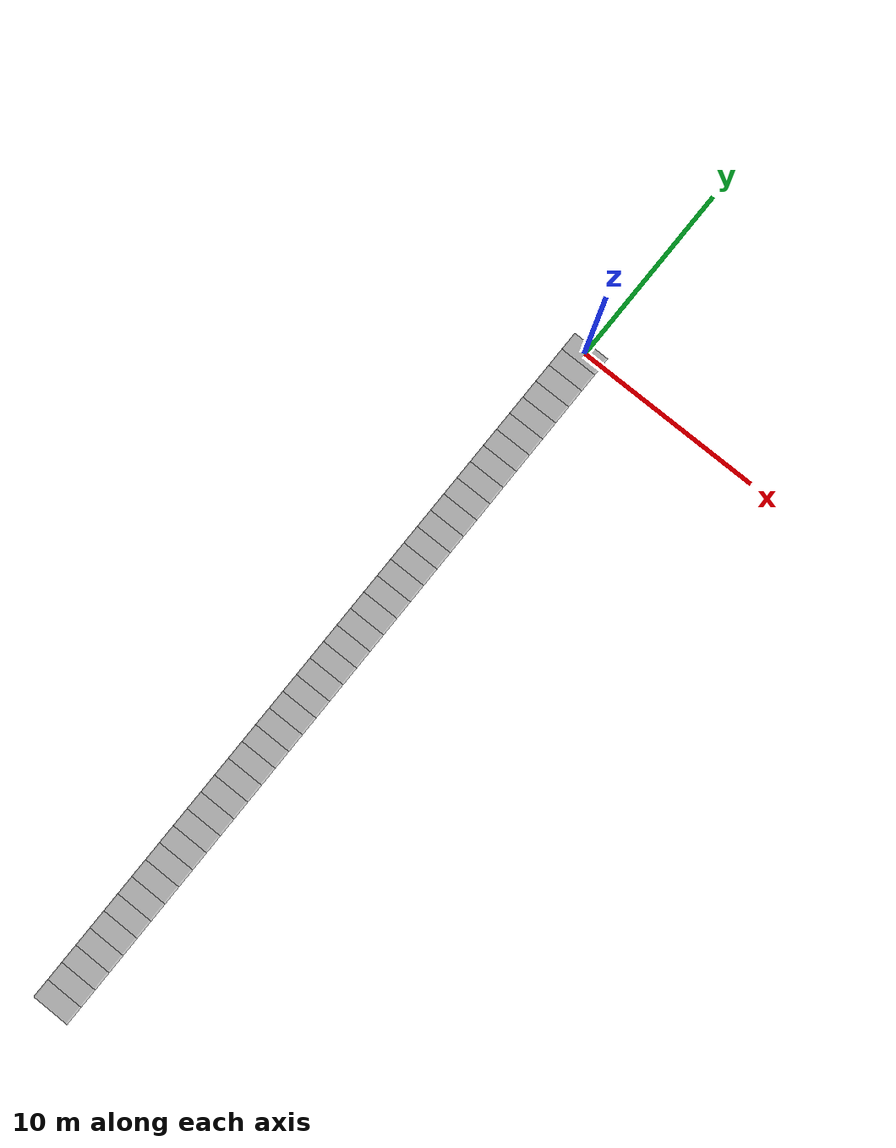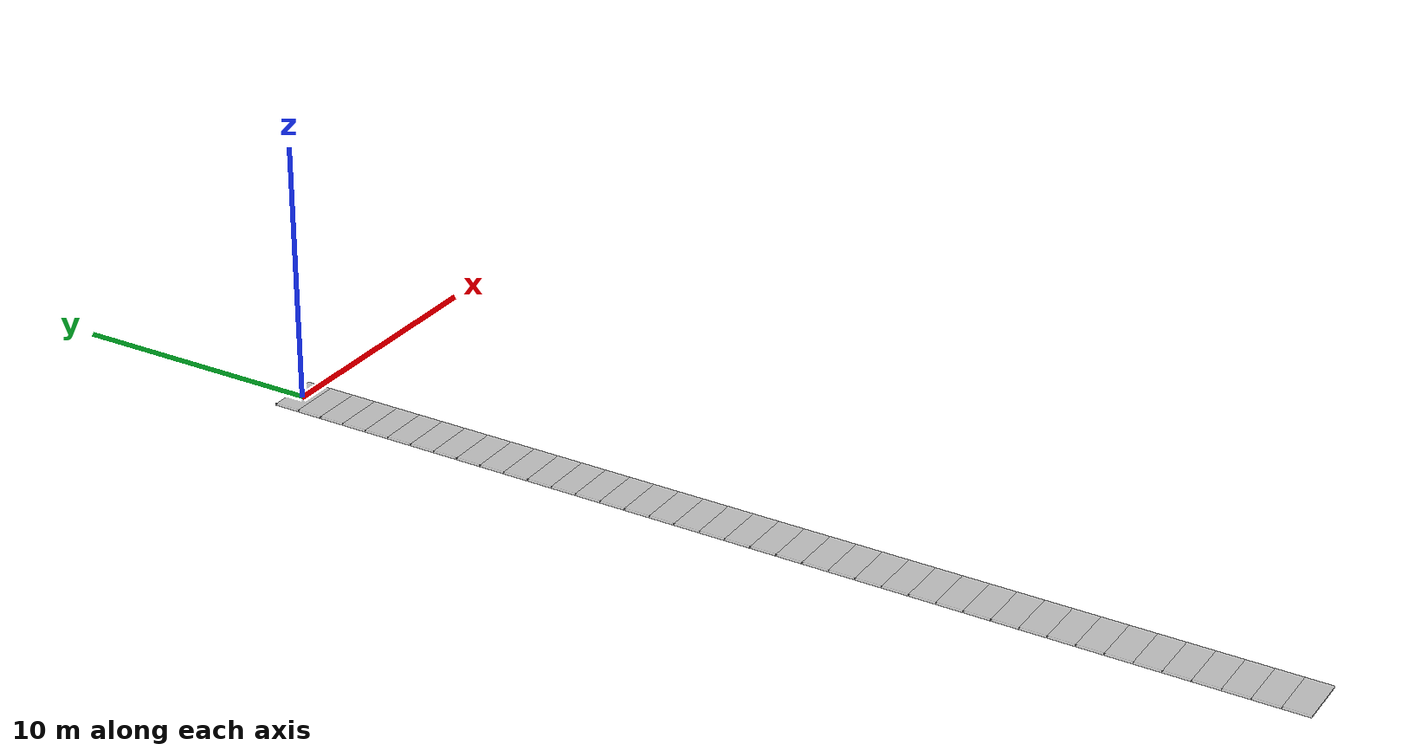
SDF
<sdf version="1.6">
 <world name="straight">
  <gravity>0 0 -9.8</gravity>
  <model name="Road.000">
   <static>1</static>
   <link name="link_d0">
    <inertial>
     <mass>0</mass>
     <inertia>
      <ixx>0.166667</ixx>
      <ixy>0</ixy>
      <ixz>0</ixz>
      <iyy>0.166667</iyy>
      <iyz>0</iyz>
      <izz>0.166667</izz>
     </inertia>
    </inertial>
    <collision concave="yes" name="collision_0">
     <geometry><mesh><scale>1 1 1</scale><uri>Road.000.obj</uri></mesh></geometry>
    </collision>
    <visual name="visual"><geometry><mesh><scale>1 1 1</scale><uri>Road.000.obj</uri></mesh></geometry></visual>
   </link>
  </model>
  <model name="Road.001">
   <static>1</static>
   <link name="link_d0">
    <inertial>
     <mass>0</mass>
     <inertia>
      <ixx>0.166667</ixx>
      <ixy>0</ixy>
      <ixz>0</ixz>
      <iyy>0.166667</iyy>
      <iyz>0</iyz>
      <izz>0.166667</izz>
     </inertia>
    </inertial>
    <collision concave="yes" name="collision_0">
     <geometry><mesh><scale>1 1 1</scale><uri>Road.001.obj</uri></mesh></geometry>
    </collision>
    <visual name="visual"><geometry><mesh><scale>1 1 1</scale><uri>Road.001.obj</uri></mesh></geometry></visual>
   </link>
  </model>
  <model name="Road.002">
   <static>1</static>
   <link name="link_d0">
    <inertial>
     <mass>0</mass>
     <inertia>
      <ixx>0.166667</ixx>
      <ixy>0</ixy>
      <ixz>0</ixz>
      <iyy>0.166667</iyy>
      <iyz>0</iyz>
      <izz>0.166667</izz>
     </inertia>
    </inertial>
    <collision concave="yes" name="collision_0">
     <geometry><mesh><scale>1 1 1</scale><uri>Road.002.obj</uri></mesh></geometry>
    </collision>
    <visual name="visual"><geometry><mesh><scale>1 1 1</scale><uri>Road.002.obj</uri></mesh></geometry></visual>
   </link>
  </model>
  <model name="Road.003">
   <static>1</static>
   <link name="link_d0">
    <inertial>
     <mass>0</mass>
     <inertia>
      <ixx>0.166667</ixx>
      <ixy>0</ixy>
      <ixz>0</ixz>
      <iyy>0.166667</iyy>
      <iyz>0</iyz>
      <izz>0.166667</izz>
     </inertia>
    </inertial>
    <collision concave="yes" name="collision_0">
     <geometry><mesh><scale>1 1 1</scale><uri>Road.003.obj</uri></mesh></geometry>
    </collision>
    <visual name="visual"><geometry><mesh><scale>1 1 1</scale><uri>Road.003.obj</uri></mesh></geometry></visual>
   </link>
  </model>
  <model name="Road.004">
   <static>1</static>
   <link name="link_d0">
    <inertial>
     <mass>0</mass>
     <inertia>
      <ixx>0.166667</ixx>
      <ixy>0</ixy>
      <ixz>0</ixz>
      <iyy>0.166667</iyy>
      <iyz>0</iyz>
      <izz>0.166667</izz>
     </inertia>
    </inertial>
    <collision concave="yes" name="collision_0">
     <geometry><mesh><scale>1 1 1</scale><uri>Road.004.obj</uri></mesh></geometry>
    </collision>
    <visual name="visual"><geometry><mesh><scale>1 1 1</scale><uri>Road.004.obj</uri></mesh></geometry></visual>
   </link>
  </model>
  <model name="Road.005">
   <static>1</static>
   <link name="link_d0">
    <inertial>
     <mass>0</mass>
     <inertia>
      <ixx>0.166667</ixx>
      <ixy>0</ixy>
      <ixz>0</ixz>
      <iyy>0.166667</iyy>
      <iyz>0</iyz>
      <izz>0.166667</izz>
     </inertia>
    </inertial>
    <collision concave="yes" name="collision_0">
     <geometry><mesh><scale>1 1 1</scale><uri>Road.005.obj</uri></mesh></geometry>
    </collision>
    <visual name="visual"><geometry><mesh><scale>1 1 1</scale><uri>Road.005.obj</uri></mesh></geometry></visual>
   </link>
  </model>
  <model name="Road.006">
   <static>1</static>
   <link name="link_d0">
    <inertial>
     <mass>0</mass>
     <inertia>
      <ixx>0.166667</ixx>
      <ixy>0</ixy>
      <ixz>0</ixz>
      <iyy>0.166667</iyy>
      <iyz>0</iyz>
      <izz>0.166667</izz>
     </inertia>
    </inertial>
    <collision concave="yes" name="collision_0">
     <geometry><mesh><scale>1 1 1</scale><uri>Road.006.obj</uri></mesh></geometry>
    </collision>
    <visual name="visual"><geometry><mesh><scale>1 1 1</scale><uri>Road.006.obj</uri></mesh></geometry></visual>
   </link>
  </model>
  <model name="Road.007">
   <static>1</static>
   <link name="link_d0">
    <inertial>
     <mass>0</mass>
     <inertia>
      <ixx>0.166667</ixx>
      <ixy>0</ixy>
      <ixz>0</ixz>
      <iyy>0.166667</iyy>
      <iyz>0</iyz>
      <izz>0.166667</izz>
     </inertia>
    </inertial>
    <collision concave="yes" name="collision_0">
     <geometry><mesh><scale>1 1 1</scale><uri>Road.007.obj</uri></mesh></geometry>
    </collision>
    <visual name="visual"><geometry><mesh><scale>1 1 1</scale><uri>Road.007.obj</uri></mesh></geometry></visual>
   </link>
  </model>
  <model name="Road.008">
   <static>1</static>
   <link name="link_d0">
    <inertial>
     <mass>0</mass>
     <inertia>
      <ixx>0.166667</ixx>
      <ixy>0</ixy>
      <ixz>0</ixz>
      <iyy>0.166667</iyy>
      <iyz>0</iyz>
      <izz>0.166667</izz>
     </inertia>
    </inertial>
    <collision concave="yes" name="collision_0">
     <geometry><mesh><scale>1 1 1</scale><uri>Road.008.obj</uri></mesh></geometry>
    </collision>
    <visual name="visual"><geometry><mesh><scale>1 1 1</scale><uri>Road.008.obj</uri></mesh></geometry></visual>
   </link>
  </model>
  <model name="Road.009">
   <static>1</static>
   <link name="link_d0">
    <inertial>
     <mass>0</mass>
     <inertia>
      <ixx>0.166667</ixx>
      <ixy>0</ixy>
      <ixz>0</ixz>
      <iyy>0.166667</iyy>
      <iyz>0</iyz>
      <izz>0.166667</izz>
     </inertia>
    </inertial>
    <collision concave="yes" name="collision_0">
     <geometry><mesh><scale>1 1 1</scale><uri>Road.009.obj</uri></mesh></geometry>
    </collision>
    <visual name="visual"><geometry><mesh><scale>1 1 1</scale><uri>Road.009.obj</uri></mesh></geometry></visual>
   </link>
  </model>
  <model name="Road.010">
   <static>1</static>
   <link name="link_d0">
    <inertial>
     <mass>0</mass>
     <inertia>
      <ixx>0.166667</ixx>
      <ixy>0</ixy>
      <ixz>0</ixz>
      <iyy>0.166667</iyy>
      <iyz>0</iyz>
      <izz>0.166667</izz>
     </inertia>
    </inertial>
    <collision concave="yes" name="collision_0">
     <geometry><mesh><scale>1 1 1</scale><uri>Road.010.obj</uri></mesh></geometry>
    </collision>
    <visual name="visual"><geometry><mesh><scale>1 1 1</scale><uri>Road.010.obj</uri></mesh></geometry></visual>
   </link>
  </model>
  <model name="Road.011">
   <static>1</static>
   <link name="link_d0">
    <inertial>
     <mass>0</mass>
     <inertia>
      <ixx>0.166667</ixx>
      <ixy>0</ixy>
      <ixz>0</ixz>
      <iyy>0.166667</iyy>
      <iyz>0</iyz>
      <izz>0.166667</izz>
     </inertia>
    </inertial>
    <collision concave="yes" name="collision_0">
     <geometry><mesh><scale>1 1 1</scale><uri>Road.011.obj</uri></mesh></geometry>
    </collision>
    <visual name="visual"><geometry><mesh><scale>1 1 1</scale><uri>Road.011.obj</uri></mesh></geometry></visual>
   </link>
  </model>
  <model name="Road.012">
   <static>1</static>
   <link name="link_d0">
    <inertial>
     <mass>0</mass>
     <inertia>
      <ixx>0.166667</ixx>
      <ixy>0</ixy>
      <ixz>0</ixz>
      <iyy>0.166667</iyy>
      <iyz>0</iyz>
      <izz>0.166667</izz>
     </inertia>
    </inertial>
    <collision concave="yes" name="collision_0">
     <geometry><mesh><scale>1 1 1</scale><uri>Road.012.obj</uri></mesh></geometry>
    </collision>
    <visual name="visual"><geometry><mesh><scale>1 1 1</scale><uri>Road.012.obj</uri></mesh></geometry></visual>
   </link>
  </model>
  <model name="Road.013">
   <static>1</static>
   <link name="link_d0">
    <inertial>
     <mass>0</mass>
     <inertia>
      <ixx>0.166667</ixx>
      <ixy>0</ixy>
      <ixz>0</ixz>
      <iyy>0.166667</iyy>
      <iyz>0</iyz>
      <izz>0.166667</izz>
     </inertia>
    </inertial>
    <collision concave="yes" name="collision_0">
     <geometry><mesh><scale>1 1 1</scale><uri>Road.013.obj</uri></mesh></geometry>
    </collision>
    <visual name="visual"><geometry><mesh><scale>1 1 1</scale><uri>Road.013.obj</uri></mesh></geometry></visual>
   </link>
  </model>
  <model name="Road.014">
   <static>1</static>
   <link name="link_d0">
    <inertial>
     <mass>0</mass>
     <inertia>
      <ixx>0.166667</ixx>
      <ixy>0</ixy>
      <ixz>0</ixz>
      <iyy>0.166667</iyy>
      <iyz>0</iyz>
      <izz>0.166667</izz>
     </inertia>
    </inertial>
    <collision concave="yes" name="collision_0">
     <geometry><mesh><scale>1 1 1</scale><uri>Road.014.obj</uri></mesh></geometry>
    </collision>
    <visual name="visual"><geometry><mesh><scale>1 1 1</scale><uri>Road.014.obj</uri></mesh></geometry></visual>
   </link>
  </model>
  <model name="Road.015">
   <static>1</static>
   <link name="link_d0">
    <inertial>
     <mass>0</mass>
     <inertia>
      <ixx>0.166667</ixx>
      <ixy>0</ixy>
      <ixz>0</ixz>
      <iyy>0.166667</iyy>
      <iyz>0</iyz>
      <izz>0.166667</izz>
     </inertia>
    </inertial>
    <collision concave="yes" name="collision_0">
     <geometry><mesh><scale>1 1 1</scale><uri>Road.015.obj</uri></mesh></geometry>
    </collision>
    <visual name="visual"><geometry><mesh><scale>1 1 1</scale><uri>Road.015.obj</uri></mesh></geometry></visual>
   </link>
  </model>
  <model name="Road.016">
   <static>1</static>
   <link name="link_d0">
    <inertial>
     <mass>0</mass>
     <inertia>
      <ixx>0.166667</ixx>
      <ixy>0</ixy>
      <ixz>0</ixz>
      <iyy>0.166667</iyy>
      <iyz>0</iyz>
      <izz>0.166667</izz>
     </inertia>
    </inertial>
    <collision concave="yes" name="collision_0">
     <geometry><mesh><scale>1 1 1</scale><uri>Road.016.obj</uri></mesh></geometry>
    </collision>
    <visual name="visual"><geometry><mesh><scale>1 1 1</scale><uri>Road.016.obj</uri></mesh></geometry></visual>
   </link>
  </model>
  <model name="Road.017">
   <static>1</static>
   <link name="link_d0">
    <inertial>
     <mass>0</mass>
     <inertia>
      <ixx>0.166667</ixx>
      <ixy>0</ixy>
      <ixz>0</ixz>
      <iyy>0.166667</iyy>
      <iyz>0</iyz>
      <izz>0.166667</izz>
     </inertia>
    </inertial>
    <collision concave="yes" name="collision_0">
     <geometry><mesh><scale>1 1 1</scale><uri>Road.017.obj</uri></mesh></geometry>
    </collision>
    <visual name="visual"><geometry><mesh><scale>1 1 1</scale><uri>Road.017.obj</uri></mesh></geometry></visual>
   </link>
  </model>
  <model name="Road.018">
   <static>1</static>
   <link name="link_d0">
    <inertial>
     <mass>0</mass>
     <inertia>
      <ixx>0.166667</ixx>
      <ixy>0</ixy>
      <ixz>0</ixz>
      <iyy>0.166667</iyy>
      <iyz>0</iyz>
      <izz>0.166667</izz>
     </inertia>
    </inertial>
    <collision concave="yes" name="collision_0">
     <geometry><mesh><scale>1 1 1</scale><uri>Road.018.obj</uri></mesh></geometry>
    </collision>
    <visual name="visual"><geometry><mesh><scale>1 1 1</scale><uri>Road.018.obj</uri></mesh></geometry></visual>
   </link>
  </model>
  <model name="Road.019">
   <static>1</static>
   <link name="link_d0">
    <inertial>
     <mass>0</mass>
     <inertia>
      <ixx>0.166667</ixx>
      <ixy>0</ixy>
      <ixz>0</ixz>
      <iyy>0.166667</iyy>
      <iyz>0</iyz>
      <izz>0.166667</izz>
     </inertia>
    </inertial>
    <collision concave="yes" name="collision_0">
     <geometry><mesh><scale>1 1 1</scale><uri>Road.019.obj</uri></mesh></geometry>
    </collision>
    <visual name="visual"><geometry><mesh><scale>1 1 1</scale><uri>Road.019.obj</uri></mesh></geometry></visual>
   </link>
  </model>
  <model name="Road.020">
   <static>1</static>
   <link name="link_d0">
    <inertial>
     <mass>0</mass>
     <inertia>
      <ixx>0.166667</ixx>
      <ixy>0</ixy>
      <ixz>0</ixz>
      <iyy>0.166667</iyy>
      <iyz>0</iyz>
      <izz>0.166667</izz>
     </inertia>
    </inertial>
    <collision concave="yes" name="collision_0">
     <geometry><mesh><scale>1 1 1</scale><uri>Road.020.obj</uri></mesh></geometry>
    </collision>
    <visual name="visual"><geometry><mesh><scale>1 1 1</scale><uri>Road.020.obj</uri></mesh></geometry></visual>
   </link>
  </model>
  <model name="Road.021">
   <static>1</static>
   <link name="link_d0">
    <inertial>
     <mass>0</mass>
     <inertia>
      <ixx>0.166667</ixx>
      <ixy>0</ixy>
      <ixz>0</ixz>
      <iyy>0.166667</iyy>
      <iyz>0</iyz>
      <izz>0.166667</izz>
     </inertia>
    </inertial>
    <collision concave="yes" name="collision_0">
     <geometry><mesh><scale>1 1 1</scale><uri>Road.021.obj</uri></mesh></geometry>
    </collision>
    <visual name="visual"><geometry><mesh><scale>1 1 1</scale><uri>Road.021.obj</uri></mesh></geometry></visual>
   </link>
  </model>
  <model name="Road.022">
   <static>1</static>
   <link name="link_d0">
    <inertial>
     <mass>0</mass>
     <inertia>
      <ixx>0.166667</ixx>
      <ixy>0</ixy>
      <ixz>0</ixz>
      <iyy>0.166667</iyy>
      <iyz>0</iyz>
      <izz>0.166667</izz>
     </inertia>
    </inertial>
    <collision concave="yes" name="collision_0">
     <geometry><mesh><scale>1 1 1</scale><uri>Road.022.obj</uri></mesh></geometry>
    </collision>
    <visual name="visual"><geometry><mesh><scale>1 1 1</scale><uri>Road.022.obj</uri></mesh></geometry></visual>
   </link>
  </model>
  <model name="Road.023">
   <static>1</static>
   <link name="link_d0">
    <inertial>
     <mass>0</mass>
     <inertia>
      <ixx>0.166667</ixx>
      <ixy>0</ixy>
      <ixz>0</ixz>
      <iyy>0.166667</iyy>
      <iyz>0</iyz>
      <izz>0.166667</izz>
     </inertia>
    </inertial>
    <collision concave="yes" name="collision_0">
     <geometry><mesh><scale>1 1 1</scale><uri>Road.023.obj</uri></mesh></geometry>
    </collision>
    <visual name="visual"><geometry><mesh><scale>1 1 1</scale><uri>Road.023.obj</uri></mesh></geometry></visual>
   </link>
  </model>
  <model name="Road.024">
   <static>1</static>
   <link name="link_d0">
    <inertial>
     <mass>0</mass>
     <inertia>
      <ixx>0.166667</ixx>
      <ixy>0</ixy>
      <ixz>0</ixz>
      <iyy>0.166667</iyy>
      <iyz>0</iyz>
      <izz>0.166667</izz>
     </inertia>
    </inertial>
    <collision concave="yes" name="collision_0">
     <geometry><mesh><scale>1 1 1</scale><uri>Road.024.obj</uri></mesh></geometry>
    </collision>
    <visual name="visual"><geometry><mesh><scale>1 1 1</scale><uri>Road.024.obj</uri></mesh></geometry></visual>
   </link>
  </model>
  <model name="Road.025">
   <static>1</static>
   <link name="link_d0">
    <inertial>
     <mass>0</mass>
     <inertia>
      <ixx>0.166667</ixx>
      <ixy>0</ixy>
      <ixz>0</ixz>
      <iyy>0.166667</iyy>
      <iyz>0</iyz>
      <izz>0.166667</izz>
     </inertia>
    </inertial>
    <collision concave="yes" name="collision_0">
     <geometry><mesh><scale>1 1 1</scale><uri>Road.025.obj</uri></mesh></geometry>
    </collision>
    <visual name="visual"><geometry><mesh><scale>1 1 1</scale><uri>Road.025.obj</uri></mesh></geometry></visual>
   </link>
  </model>
  <model name="Road.026">
   <static>1</static>
   <link name="link_d0">
    <inertial>
     <mass>0</mass>
     <inertia>
      <ixx>0.166667</ixx>
      <ixy>0</ixy>
      <ixz>0</ixz>
      <iyy>0.166667</iyy>
      <iyz>0</iyz>
      <izz>0.166667</izz>
     </inertia>
    </inertial>
    <collision concave="yes" name="collision_0">
     <geometry><mesh><scale>1 1 1</scale><uri>Road.026.obj</uri></mesh></geometry>
    </collision>
    <visual name="visual"><geometry><mesh><scale>1 1 1</scale><uri>Road.026.obj</uri></mesh></geometry></visual>
   </link>
  </model>
  <model name="Road.027">
   <static>1</static>
   <link name="link_d0">
    <inertial>
     <mass>0</mass>
     <inertia>
      <ixx>0.166667</ixx>
      <ixy>0</ixy>
      <ixz>0</ixz>
      <iyy>0.166667</iyy>
      <iyz>0</iyz>
      <izz>0.166667</izz>
     </inertia>
    </inertial>
    <collision concave="yes" name="collision_0">
     <geometry><mesh><scale>1 1 1</scale><uri>Road.027.obj</uri></mesh></geometry>
    </collision>
    <visual name="visual"><geometry><mesh><scale>1 1 1</scale><uri>Road.027.obj</uri></mesh></geometry></visual>
   </link>
  </model>
  <model name="Road.028">
   <static>1</static>
   <link name="link_d0">
    <inertial>
     <mass>0</mass>
     <inertia>
      <ixx>0.166667</ixx>
      <ixy>0</ixy>
      <ixz>0</ixz>
      <iyy>0.166667</iyy>
      <iyz>0</iyz>
      <izz>0.166667</izz>
     </inertia>
    </inertial>
    <collision concave="yes" name="collision_0">
     <geometry><mesh><scale>1 1 1</scale><uri>Road.028.obj</uri></mesh></geometry>
    </collision>
    <visual name="visual"><geometry><mesh><scale>1 1 1</scale><uri>Road.028.obj</uri></mesh></geometry></visual>
   </link>
  </model>
  <model name="Road.029">
   <static>1</static>
   <link name="link_d0">
    <inertial>
     <mass>0</mass>
     <inertia>
      <ixx>0.166667</ixx>
      <ixy>0</ixy>
      <ixz>0</ixz>
      <iyy>0.166667</iyy>
      <iyz>0</iyz>
      <izz>0.166667</izz>
     </inertia>
    </inertial>
    <collision concave="yes" name="collision_0">
     <geometry><mesh><scale>1 1 1</scale><uri>Road.029.obj</uri></mesh></geometry>
    </collision>
    <visual name="visual"><geometry><mesh><scale>1 1 1</scale><uri>Road.029.obj</uri></mesh></geometry></visual>
   </link>
  </model>
  <model name="Road.030">
   <static>1</static>
   <link name="link_d0">
    <inertial>
     <mass>0</mass>
     <inertia>
      <ixx>0.166667</ixx>
      <ixy>0</ixy>
      <ixz>0</ixz>
      <iyy>0.166667</iyy>
      <iyz>0</iyz>
      <izz>0.166667</izz>
     </inertia>
    </inertial>
    <collision concave="yes" name="collision_0">
     <geometry><mesh><scale>1 1 1</scale><uri>Road.030.obj</uri></mesh></geometry>
    </collision>
    <visual name="visual"><geometry><mesh><scale>1 1 1</scale><uri>Road.030.obj</uri></mesh></geometry></visual>
   </link>
  </model>
  <model name="Road.031">
   <static>1</static>
   <link name="link_d0">
    <inertial>
     <mass>0</mass>
     <inertia>
      <ixx>0.166667</ixx>
      <ixy>0</ixy>
      <ixz>0</ixz>
      <iyy>0.166667</iyy>
      <iyz>0</iyz>
      <izz>0.166667</izz>
     </inertia>
    </inertial>
    <collision concave="yes" name="collision_0">
     <geometry><mesh><scale>1 1 1</scale><uri>Road.031.obj</uri></mesh></geometry>
    </collision>
    <visual name="visual"><geometry><mesh><scale>1 1 1</scale><uri>Road.031.obj</uri></mesh></geometry></visual>
   </link>
  </model>
  <model name="Road.032">
   <static>1</static>
   <link name="link_d0">
    <inertial>
     <mass>0</mass>
     <inertia>
      <ixx>0.166667</ixx>
      <ixy>0</ixy>
      <ixz>0</ixz>
      <iyy>0.166667</iyy>
      <iyz>0</iyz>
      <izz>0.166667</izz>
     </inertia>
    </inertial>
    <collision concave="yes" name="collision_0">
     <geometry><mesh><scale>1 1 1</scale><uri>Road.032.obj</uri></mesh></geometry>
    </collision>
    <visual name="visual"><geometry><mesh><scale>1 1 1</scale><uri>Road.032.obj</uri></mesh></geometry></visual>
   </link>
  </model>
  <model name="Road.033">
   <static>1</static>
   <link name="link_d0">
    <inertial>
     <mass>0</mass>
     <inertia>
      <ixx>0.166667</ixx>
      <ixy>0</ixy>
      <ixz>0</ixz>
      <iyy>0.166667</iyy>
      <iyz>0</iyz>
      <izz>0.166667</izz>
     </inertia>
    </inertial>
    <collision concave="yes" name="collision_0">
     <geometry><mesh><scale>1 1 1</scale><uri>Road.033.obj</uri></mesh></geometry>
    </collision>
    <visual name="visual"><geometry><mesh><scale>1 1 1</scale><uri>Road.033.obj</uri></mesh></geometry></visual>
   </link>
  </model>
  <model name="Road.034">
   <static>1</static>
   <link name="link_d0">
    <inertial>
     <mass>0</mass>
     <inertia>
      <ixx>0.166667</ixx>
      <ixy>0</ixy>
      <ixz>0</ixz>
      <iyy>0.166667</iyy>
      <iyz>0</iyz>
      <izz>0.166667</izz>
     </inertia>
    </inertial>
    <collision concave="yes" name="collision_0">
     <geometry><mesh><scale>1 1 1</scale><uri>Road.034.obj</uri></mesh></geometry>
    </collision>
    <visual name="visual"><geometry><mesh><scale>1 1 1</scale><uri>Road.034.obj</uri></mesh></geometry></visual>
   </link>
  </model>
  <model name="Road.035">
   <static>1</static>
   <link name="link_d0">
    <inertial>
     <mass>0</mass>
     <inertia>
      <ixx>0.166667</ixx>
      <ixy>0</ixy>
      <ixz>0</ixz>
      <iyy>0.166667</iyy>
      <iyz>0</iyz>
      <izz>0.166667</izz>
     </inertia>
    </inertial>
    <collision concave="yes" name="collision_0">
     <geometry><mesh><scale>1 1 1</scale><uri>Road.035.obj</uri></mesh></geometry>
    </collision>
    <visual name="visual"><geometry><mesh><scale>1 1 1</scale><uri>Road.035.obj</uri></mesh></geometry></visual>
   </link>
  </model>
  <model name="Road.036">
   <static>1</static>
   <link name="link_d0">
    <inertial>
     <mass>0</mass>
     <inertia>
      <ixx>0.166667</ixx>
      <ixy>0</ixy>
      <ixz>0</ixz>
      <iyy>0.166667</iyy>
      <iyz>0</iyz>
      <izz>0.166667</izz>
     </inertia>
    </inertial>
    <collision concave="yes" name="collision_0">
     <geometry><mesh><scale>1 1 1</scale><uri>Road.036.obj</uri></mesh></geometry>
    </collision>
    <visual name="visual"><geometry><mesh><scale>1 1 1</scale><uri>Road.036.obj</uri></mesh></geometry></visual>
   </link>
  </model>
  <model name="Road.037">
   <static>1</static>
   <link name="link_d0">
    <inertial>
     <mass>0</mass>
     <inertia>
      <ixx>0.166667</ixx>
      <ixy>0</ixy>
      <ixz>0</ixz>
      <iyy>0.166667</iyy>
      <iyz>0</iyz>
      <izz>0.166667</izz>
     </inertia>
    </inertial>
    <collision concave="yes" name="collision_0">
     <geometry><mesh><scale>1 1 1</scale><uri>Road.037.obj</uri></mesh></geometry>
    </collision>
    <visual name="visual"><geometry><mesh><scale>1 1 1</scale><uri>Road.037.obj</uri></mesh></geometry></visual>
   </link>
  </model>
  <model name="Road.038">
   <static>1</static>
   <link name="link_d0">
    <inertial>
     <mass>0</mass>
     <inertia>
      <ixx>0.166667</ixx>
      <ixy>0</ixy>
      <ixz>0</ixz>
      <iyy>0.166667</iyy>
      <iyz>0</iyz>
      <izz>0.166667</izz>
     </inertia>
    </inertial>
    <collision concave="yes" name="collision_0">
     <geometry><mesh><scale>1 1 1</scale><uri>Road.038.obj</uri></mesh></geometry>
    </collision>
    <visual name="visual"><geometry><mesh><scale>1 1 1</scale><uri>Road.038.obj</uri></mesh></geometry></visual>
   </link>
  </model>
  <model name="Road.039">
   <static>1</static>
   <link name="link_d0">
    <inertial>
     <mass>0</mass>
     <inertia>
      <ixx>0.166667</ixx>
      <ixy>0</ixy>
      <ixz>0</ixz>
      <iyy>0.166667</iyy>
      <iyz>0</iyz>
      <izz>0.166667</izz>
     </inertia>
    </inertial>
    <collision concave="yes" name="collision_0">
     <geometry><mesh><scale>1 1 1</scale><uri>Road.039.obj</uri></mesh></geometry>
    </collision>
    <visual name="visual"><geometry><mesh><scale>1 1 1</scale><uri>Road.039.obj</uri></mesh></geometry></visual>
   </link>
  </model>
 </world>
</sdf>
